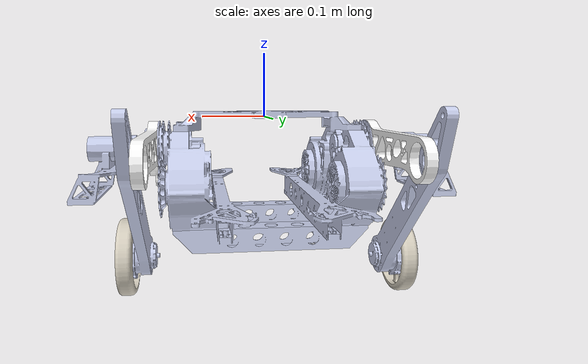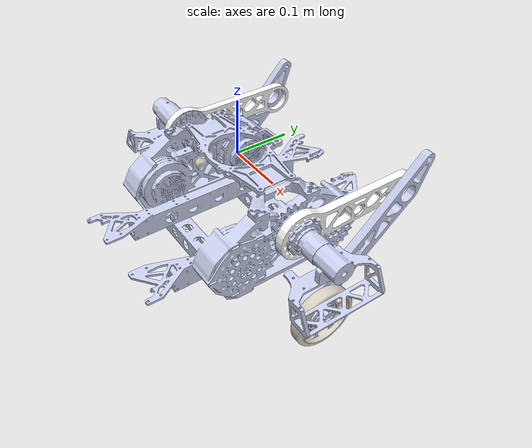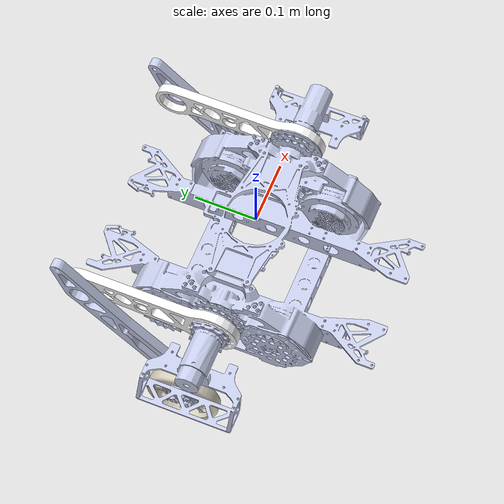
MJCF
<mujoco model="urdf_V3.3_rl">
  <!-- Same physics as the deploy sim2sim scene (urdf_v3.3_scene.xml):
       timestep 0.001, two substeps per 2 ms control tick. -->
  <option timestep="0.001" integrator="Euler" solver="Newton" iterations="100" tolerance="1e-8"/>
  <compiler angle="radian"/>

  <asset>
    <mesh name="base_link" content_type="model/stl" file="meshes/base_link.STL"/>
    <mesh name="L_link1" content_type="model/stl" file="meshes/L_link1.STL"/>
    <mesh name="L_link2" content_type="model/stl" file="meshes/L_link2.STL"/>
    <mesh name="L_link3" content_type="model/stl" file="meshes/L_link3.STL"/>
    <mesh name="R_link1" content_type="model/stl" file="meshes/R_link1.STL"/>
    <mesh name="R_link2" content_type="model/stl" file="meshes/R_link2.STL"/>
    <mesh name="R_link3" content_type="model/stl" file="meshes/R_link3.STL"/>
  </asset>

  <worldbody>
<body name="base_link">
    <freejoint/>
    <inertial pos="-0.0021637 0.00026679 -0.088513" mass="10.8" fullinertia="0.0852 0.22 0.273 -2.2E-05 -0.000887 -3E-05"/>

    <geom type="mesh" rgba="0.79216 0.81961 0.93333 1" mesh="base_link"/>
    <body name="L_link1" pos="0.1833 0 -0.0493" quat="0.499998 0.5 0.500002 0.5">
      <inertial pos="0.095035 0.0033671 -0.0074867" quat="0.00832317 0.705507 -0.0096008 0.708589" mass="0.161" diaginertia="0.00100002 0.000945558 7.74248e-05"/>
      <joint name="L_joint1" range="0.2358 1.7314" actuatorfrcrange="-100 100" damping="0.5" frictionloss="0.1" armature="0.0158" axis="0 0 -1"/>
      <geom type="mesh" rgba="1 1 1 1" mesh="L_link1"/>
      <body name="L_link2" pos="0.21 0 0" quat="0.360493 0 0 -0.932762">
        <inertial pos="0.15963 8.3413e-05 0.011927" quat="0.147875 0.706932 0.141613 0.676997" mass="0.45" diaginertia="0.00500907 0.005 0.00015793"/>
        <joint name="L_joint2" range="0.2034 2.4315" actuatorfrcrange="-100 100" damping="0.5" frictionloss="0.1" armature="0.0158"/>
        <geom type="mesh" rgba="0.79216 0.81961 0.93333 1" mesh="L_link2"/>
        <body name="L_link3" pos="0.25 0 0.015" quat="0.707105 0 0 -0.707108">
          <inertial pos="0 0 0.020472" quat="0.5 0.5 -0.5 0.5" mass="0.2" diaginertia="0.000575 0.000296 0.000296"/>
          <joint name="L_joint3" range="-3.14 3.14" actuatorfrcrange="-100 100" damping="0.02" frictionloss="0.02"/>
          <geom type="mesh" rgba="0.84314 0.81569 0.75294 1" mesh="L_link3"/>
        </body>
      </body>
    </body>
    <body name="R_link1" pos="-0.1833 0 -0.0493" quat="0.499998 0.5 0.500002 0.5">
      <inertial pos="0.095035 0.0033671 0.0074867" quat="0.0096008 0.708589 -0.00832317 0.705507" mass="0.161" diaginertia="0.00100002 0.000945558 7.74248e-05"/>
      <joint name="R_joint1" range="-1.0702 -0.6702" actuatorfrcrange="-100 100" damping="0.5" frictionloss="0.1" armature="0.0158"/>
      <geom type="mesh" rgba="1 1 1 1" mesh="R_link1"/>
      <body name="R_link2" pos="0.21 0 0" quat="0.382173 0 0 -0.924091">
        <inertial pos="0.15963 8.3412e-05 -0.011927" quat="-0.142277 0.676927 -0.148541 0.706726" mass="0.45" diaginertia="0.00500899 0.005 0.000158008"/>
        <joint name="R_joint2" range="-1.2844 -0.9844" actuatorfrcrange="-100 100" damping="0.5" frictionloss="0.1" armature="0.0158" axis="0 0 -1"/>
        <geom type="mesh" rgba="0.79216 0.81961 0.93333 1" mesh="R_link2"/>
        <body name="R_link3" pos="0.25 0 -0.015" quat="-3.67321e-06 0 0 1">
          <inertial pos="0 0 -0.020472" quat="0.5 0.5 -0.5 0.5" mass="0.2" diaginertia="0.000575 0.000296 0.000296"/>
          <joint name="R_joint3" range="-3.14 3.14" actuatorfrcrange="-100 100" damping="0.02" frictionloss="0.02" axis="0 0 -1"/>
          <geom type="mesh" rgba="0.84314 0.81569 0.75294 1" mesh="R_link3"/>
        </body>
      </body>
    </body>
  </body>
</worldbody>
<actuator><motor name="L_joint1" joint="L_joint1" ctrlrange="-40 40" gear="1"/><motor name="L_joint2" joint="L_joint2" ctrlrange="-40 40" gear="1"/><motor name="R_joint1" joint="R_joint1" ctrlrange="-40 40" gear="1"/><motor name="R_joint2" joint="R_joint2" ctrlrange="-40 40" gear="1"/><motor name="L_joint3" joint="L_joint3" ctrlrange="-5 5" gear="1"/><motor name="R_joint3" joint="R_joint3" ctrlrange="-5 5" gear="1"/></actuator>
</mujoco>
